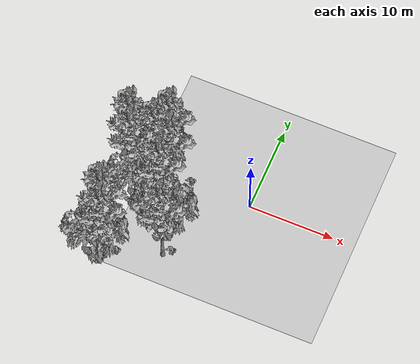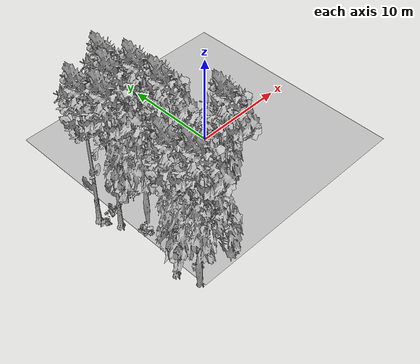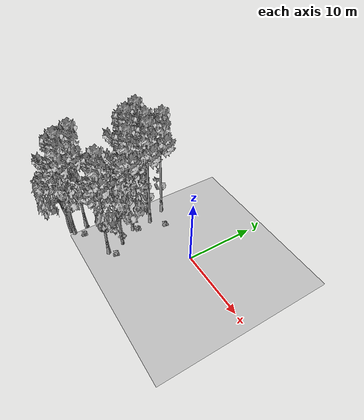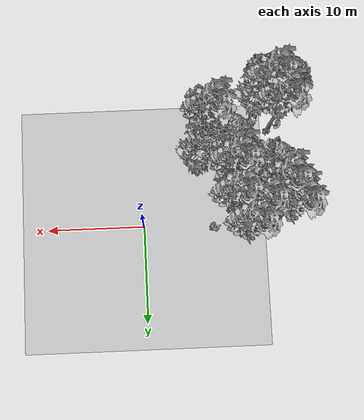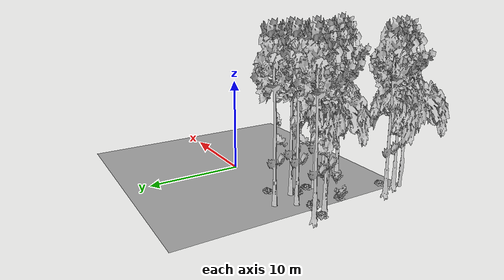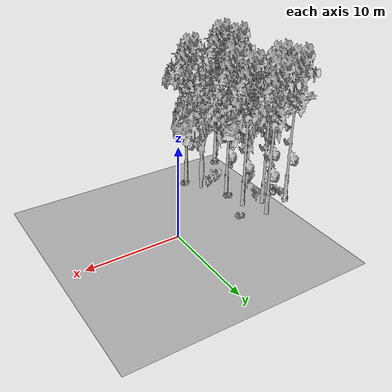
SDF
<sdf version="1.7">
 <world name="default">
  <model name="ground_plane">
   <static>1</static>
   <link name="link">
    <collision name="collision">
     <pose>-50 0 0 0 -0 0</pose>
     <geometry><plane><normal>0 0 1</normal><size>80 80</size></plane></geometry>
     <surface><contact><ode><min_depth>0.01</min_depth><max_vel>0</max_vel></ode></contact></surface>
    </collision>
    <visual name="grass">
     <cast_shadows>0</cast_shadows>
     <geometry>
      <mesh>
       <scale>0.46714285714285714 0.46714285714285714 0.1</scale>
       <uri>file://grass_plane/meshes/grass_plane.dae</uri>
      </mesh>
     </geometry>
    </visual>
   </link>
  </model>
  <model name="Tree 57">
   <static>1</static>
   <pose>-13.382933976603798 -9.836009532071053 0 1.57079 -0 0</pose>
   <link name="link">
    <collision name="collision">
     <geometry><mesh><scale>3.5 5 3.5</scale><uri>model://tree_9/meshes/tree_9.obj</uri></mesh></geometry>
    </collision>
    <visual name="visual">
     <geometry><mesh><scale>3.5 5 3.5</scale><uri>model://tree_9/meshes/tree_9.obj</uri></mesh></geometry>
    </visual>
   </link>
  </model>
  <model name="Tree 125">
   <static>1</static>
   <pose>-13.132770717262527 -12.273451865414362 0 1.57079 -0 0</pose>
   <link name="link">
    <collision name="collision">
     <geometry><mesh><scale>3.5 5 3.5</scale><uri>model://tree_2/meshes/tree_2.obj</uri></mesh></geometry>
    </collision>
    <visual name="visual">
     <geometry><mesh><scale>3.5 5 3.5</scale><uri>model://tree_2/meshes/tree_2.obj</uri></mesh></geometry>
    </visual>
   </link>
  </model>
  <model name="Tree 252">
   <static>1</static>
   <pose>-6.671022654436783 -9.205954286497892 0 1.57079 -0 0</pose>
   <link name="link">
    <collision name="collision">
     <geometry><mesh><scale>3.5 5 3.5</scale><uri>model://tree_9/meshes/tree_9.obj</uri></mesh></geometry>
    </collision>
    <visual name="visual">
     <geometry><mesh><scale>3.5 5 3.5</scale><uri>model://tree_9/meshes/tree_9.obj</uri></mesh></geometry>
    </visual>
   </link>
  </model>
  <model name="Tree 309">
   <static>1</static>
   <pose>-8.929869943889532 -1.406386443900665 0 1.57079 -0 0</pose>
   <link name="link">
    <collision name="collision">
     <geometry><mesh><scale>3.5 5 3.5</scale><uri>model://tree_9/meshes/tree_9.obj</uri></mesh></geometry>
    </collision>
    <visual name="visual">
     <geometry><mesh><scale>3.5 5 3.5</scale><uri>model://tree_9/meshes/tree_9.obj</uri></mesh></geometry>
    </visual>
   </link>
  </model>
  <model name="Tree 416">
   <static>1</static>
   <pose>-13.133454078940257 -2.320010327141148 0 1.57079 -0 0</pose>
   <link name="link">
    <collision name="collision">
     <geometry><mesh><scale>3.5 5 3.5</scale><uri>model://tree_9/meshes/tree_9.obj</uri></mesh></geometry>
    </collision>
    <visual name="visual">
     <geometry><mesh><scale>3.5 5 3.5</scale><uri>model://tree_9/meshes/tree_9.obj</uri></mesh></geometry>
    </visual>
   </link>
  </model>
  <model name="Tree 422">
   <static>1</static>
   <pose>-14.080857749002007 -0.41281233466261824 0 1.57079 -0 0</pose>
   <link name="link">
    <collision name="collision">
     <geometry><mesh><scale>3.5 5 3.5</scale><uri>model://tree_9/meshes/tree_9.obj</uri></mesh></geometry>
    </collision>
    <visual name="visual">
     <geometry><mesh><scale>3.5 5 3.5</scale><uri>model://tree_9/meshes/tree_9.obj</uri></mesh></geometry>
    </visual>
   </link>
  </model>
  <model name="Tree 432">
   <static>1</static>
   <pose>-8.858263546415177 -4.336569759901209 0 1.57079 -0 0</pose>
   <link name="link">
    <collision name="collision">
     <geometry><mesh><scale>3.5 5 3.5</scale><uri>model://tree_9/meshes/tree_9.obj</uri></mesh></geometry>
    </collision>
    <visual name="visual">
     <geometry><mesh><scale>3.5 5 3.5</scale><uri>model://tree_9/meshes/tree_9.obj</uri></mesh></geometry>
    </visual>
   </link>
  </model>
  <model name="Tree 474">
   <static>1</static>
   <pose>-12.544937712506634 -11.887228727605745 0 1.57079 -0 0</pose>
   <link name="link">
    <collision name="collision">
     <geometry><mesh><scale>3.5 5 3.5</scale><uri>model://tree_9/meshes/tree_9.obj</uri></mesh></geometry>
    </collision>
    <visual name="visual">
     <geometry><mesh><scale>3.5 5 3.5</scale><uri>model://tree_9/meshes/tree_9.obj</uri></mesh></geometry>
    </visual>
   </link>
  </model>
  <model name="Tree 488">
   <static>1</static>
   <pose>-11.377484560299909 -3.963630226071551 0 1.57079 -0 0</pose>
   <link name="link">
    <collision name="collision">
     <geometry><mesh><scale>3.5 5 3.5</scale><uri>model://tree_2/meshes/tree_2.obj</uri></mesh></geometry>
    </collision>
    <visual name="visual">
     <geometry><mesh><scale>3.5 5 3.5</scale><uri>model://tree_2/meshes/tree_2.obj</uri></mesh></geometry>
    </visual>
   </link>
  </model>
  <model name="Tree 516">
   <static>1</static>
   <pose>-11.016255006231518 -0.6745075455451826 0 1.57079 -0 0</pose>
   <link name="link">
    <collision name="collision">
     <geometry><mesh><scale>3.5 5 3.5</scale><uri>model://tree_9/meshes/tree_9.obj</uri></mesh></geometry>
    </collision>
    <visual name="visual">
     <geometry><mesh><scale>3.5 5 3.5</scale><uri>model://tree_9/meshes/tree_9.obj</uri></mesh></geometry>
    </visual>
   </link>
  </model>
  <model name="Tree 554">
   <static>1</static>
   <pose>-7.253826483288293 -6.829694781001258 0 1.57079 -0 0</pose>
   <link name="link">
    <collision name="collision">
     <geometry><mesh><scale>3.5 5 3.5</scale><uri>model://tree_2/meshes/tree_2.obj</uri></mesh></geometry>
    </collision>
    <visual name="visual">
     <geometry><mesh><scale>3.5 5 3.5</scale><uri>model://tree_2/meshes/tree_2.obj</uri></mesh></geometry>
    </visual>
   </link>
  </model>
  <model name="Tree 579">
   <static>1</static>
   <pose>-10.082929520885635 1.2212864399846666 0 1.57079 -0 0</pose>
   <link name="link">
    <collision name="collision">
     <geometry><mesh><scale>3.5 5 3.5</scale><uri>model://tree_9/meshes/tree_9.obj</uri></mesh></geometry>
    </collision>
    <visual name="visual">
     <geometry><mesh><scale>3.5 5 3.5</scale><uri>model://tree_9/meshes/tree_9.obj</uri></mesh></geometry>
    </visual>
   </link>
  </model>
  <model name="Bush 64">
   <static>1</static>
   <pose>-12.413861913688475 -4.870306876291181 0 1.57079 -0 0</pose>
   <link name="link">
    <collision name="collision">
     <geometry><mesh><scale>2 2 2</scale><uri>model://bush_0/meshes/bush_0.obj</uri></mesh></geometry>
     <surface><contact><collide_without_contact>false</collide_without_contact></contact></surface>
    </collision>
    <visual name="visual">
     <geometry><mesh><scale>2 2 2</scale><uri>model://bush_0/meshes/bush_0.obj</uri></mesh></geometry>
    </visual>
   </link>
  </model>
  <model name="Bush 92">
   <static>1</static>
   <pose>-9.268112354640593 -6.995771344817584 0 1.57079 -0 0</pose>
   <link name="link">
    <collision name="collision">
     <geometry><mesh><scale>2 2 2</scale><uri>model://bush_0/meshes/bush_0.obj</uri></mesh></geometry>
     <surface><contact><collide_without_contact>false</collide_without_contact></contact></surface>
    </collision>
    <visual name="visual">
     <geometry><mesh><scale>2 2 2</scale><uri>model://bush_0/meshes/bush_0.obj</uri></mesh></geometry>
    </visual>
   </link>
  </model>
  <model name="Bush 208">
   <static>1</static>
   <pose>-7.834364452979436 -6.430539782260958 0 1.57079 -0 0</pose>
   <link name="link">
    <collision name="collision">
     <geometry><mesh><scale>2 2 2</scale><uri>model://bush_0/meshes/bush_0.obj</uri></mesh></geometry>
     <surface><contact><collide_without_contact>false</collide_without_contact></contact></surface>
    </collision>
    <visual name="visual">
     <geometry><mesh><scale>2 2 2</scale><uri>model://bush_0/meshes/bush_0.obj</uri></mesh></geometry>
    </visual>
   </link>
  </model>
  <model name="Bush 266">
   <static>1</static>
   <pose>-13.081833762536096 -1.179255160464109 0 1.57079 -0 0</pose>
   <link name="link">
    <collision name="collision">
     <geometry><mesh><scale>2 2 2</scale><uri>model://bush_4/meshes/bush_4.obj</uri></mesh></geometry>
     <surface><contact><collide_without_contact>false</collide_without_contact></contact></surface>
    </collision>
    <visual name="visual">
     <geometry><mesh><scale>2 2 2</scale><uri>model://bush_4/meshes/bush_4.obj</uri></mesh></geometry>
    </visual>
   </link>
  </model>
  <model name="Bush 436">
   <static>1</static>
   <pose>-12.12859995248418 -4.9726350883953145 0 1.57079 -0 0</pose>
   <link name="link">
    <collision name="collision">
     <geometry><mesh><scale>2 2 2</scale><uri>model://bush_2/meshes/bush_2.obj</uri></mesh></geometry>
     <surface><contact><collide_without_contact>false</collide_without_contact></contact></surface>
    </collision>
    <visual name="visual">
     <geometry><mesh><scale>2 2 2</scale><uri>model://bush_2/meshes/bush_2.obj</uri></mesh></geometry>
    </visual>
   </link>
  </model>
  <model name="Bush 486">
   <static>1</static>
   <pose>-14.109843255821648 -1.3637935457606787 0 1.57079 -0 0</pose>
   <link name="link">
    <collision name="collision">
     <geometry><mesh><scale>2 2 2</scale><uri>model://bush_2/meshes/bush_2.obj</uri></mesh></geometry>
     <surface><contact><collide_without_contact>false</collide_without_contact></contact></surface>
    </collision>
    <visual name="visual">
     <geometry><mesh><scale>2 2 2</scale><uri>model://bush_2/meshes/bush_2.obj</uri></mesh></geometry>
    </visual>
   </link>
  </model>
  <model name="Bush 492">
   <static>1</static>
   <pose>-10.502877897164783 -1.1103695660408164 0 1.57079 -0 0</pose>
   <link name="link">
    <collision name="collision">
     <geometry><mesh><scale>2 2 2</scale><uri>model://bush_5/meshes/bush_5.obj</uri></mesh></geometry>
     <surface><contact><collide_without_contact>false</collide_without_contact></contact></surface>
    </collision>
    <visual name="visual">
     <geometry><mesh><scale>2 2 2</scale><uri>model://bush_5/meshes/bush_5.obj</uri></mesh></geometry>
    </visual>
   </link>
  </model>
  <model name="Bush 493">
   <static>1</static>
   <pose>-7.347631958808442 0.26535073926371666 0 1.57079 -0 0</pose>
   <link name="link">
    <collision name="collision">
     <geometry><mesh><scale>2 2 2</scale><uri>model://bush_2/meshes/bush_2.obj</uri></mesh></geometry>
     <surface><contact><collide_without_contact>false</collide_without_contact></contact></surface>
    </collision>
    <visual name="visual">
     <geometry><mesh><scale>2 2 2</scale><uri>model://bush_2/meshes/bush_2.obj</uri></mesh></geometry>
    </visual>
   </link>
  </model>
  <model name="Bush 553">
   <static>1</static>
   <pose>-6.01580531765844 -8.417641651524306 0 1.57079 -0 0</pose>
   <link name="link">
    <collision name="collision">
     <geometry><mesh><scale>2 2 2</scale><uri>model://bush_2/meshes/bush_2.obj</uri></mesh></geometry>
     <surface><contact><collide_without_contact>false</collide_without_contact></contact></surface>
    </collision>
    <visual name="visual">
     <geometry><mesh><scale>2 2 2</scale><uri>model://bush_2/meshes/bush_2.obj</uri></mesh></geometry>
    </visual>
   </link>
  </model>
  <model name="Bush 570">
   <static>1</static>
   <pose>-8.591350105859817 -3.645436584159434 0 1.57079 -0 0</pose>
   <link name="link">
    <collision name="collision">
     <geometry><mesh><scale>2 2 2</scale><uri>model://bush_2/meshes/bush_2.obj</uri></mesh></geometry>
     <surface><contact><collide_without_contact>false</collide_without_contact></contact></surface>
    </collision>
    <visual name="visual">
     <geometry><mesh><scale>2 2 2</scale><uri>model://bush_2/meshes/bush_2.obj</uri></mesh></geometry>
    </visual>
   </link>
  </model>
  <model name="Bush 581">
   <static>1</static>
   <pose>-11.71765734570333 -10.768464121601031 0 1.57079 -0 0</pose>
   <link name="link">
    <collision name="collision">
     <geometry><mesh><scale>2 2 2</scale><uri>model://bush_2/meshes/bush_2.obj</uri></mesh></geometry>
     <surface><contact><collide_without_contact>false</collide_without_contact></contact></surface>
    </collision>
    <visual name="visual">
     <geometry><mesh><scale>2 2 2</scale><uri>model://bush_2/meshes/bush_2.obj</uri></mesh></geometry>
    </visual>
   </link>
  </model>
 </world>
</sdf>
